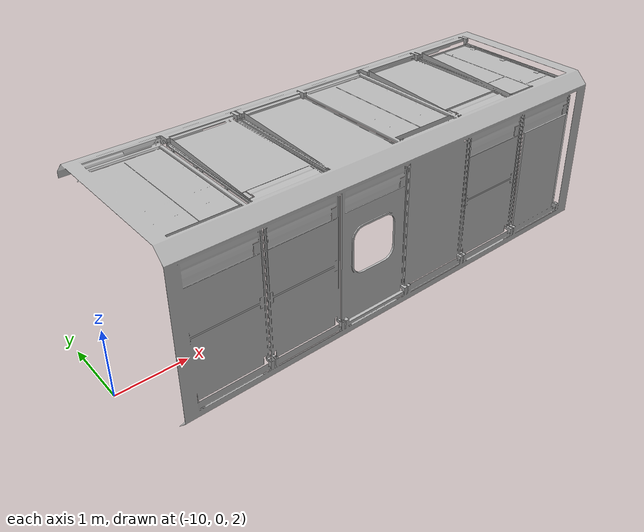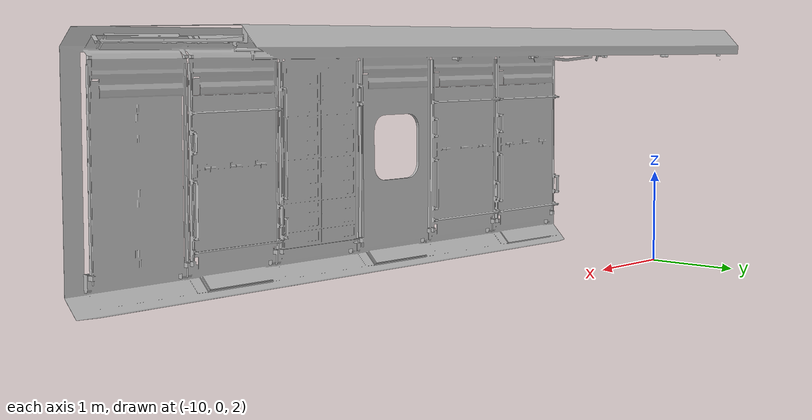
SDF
<?xml version="1.0" ?>
<sdf version="1.5">
  <model name="iss_half">
    <static>true</static>
    <pose>0 0 0 0 0 0</pose>
    <link name="body">
      <inertial>
        <mass>0.1</mass>
        <inertia>
          <ixx>1</ixx>
          <ixy>0</ixy>
          <ixz>0</ixz>
          <iyy>1</iyy>
          <iyz>0</iyz>
          <izz>1</izz>
        </inertia>
      </inertial>
      <collision name="ISS_Surface">
        <geometry>
          <mesh>
            <uri>model://iss/meshes/US_Lab_ISS_half.dae</uri>
          </mesh>
        </geometry>
      </collision>
      <visual name="ISS_Visual">
        <geometry>
          <mesh>
            <uri>model://iss/meshes//US_Lab_ISS_half.dae</uri>
          </mesh>
        </geometry>
      </visual>
    </link>
  </model>
</sdf>
